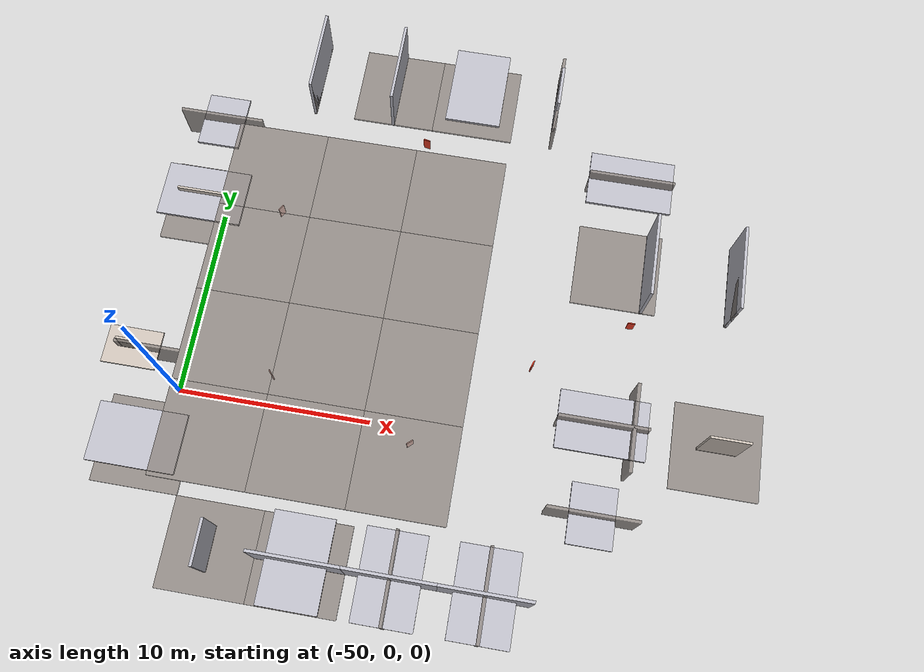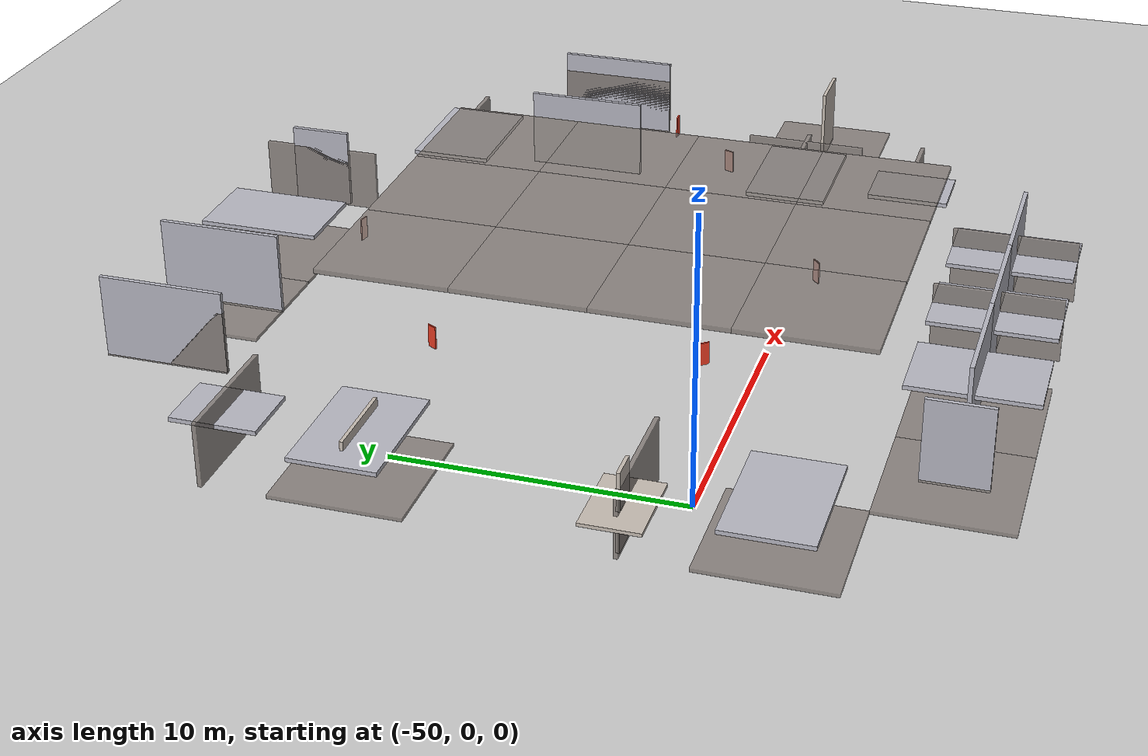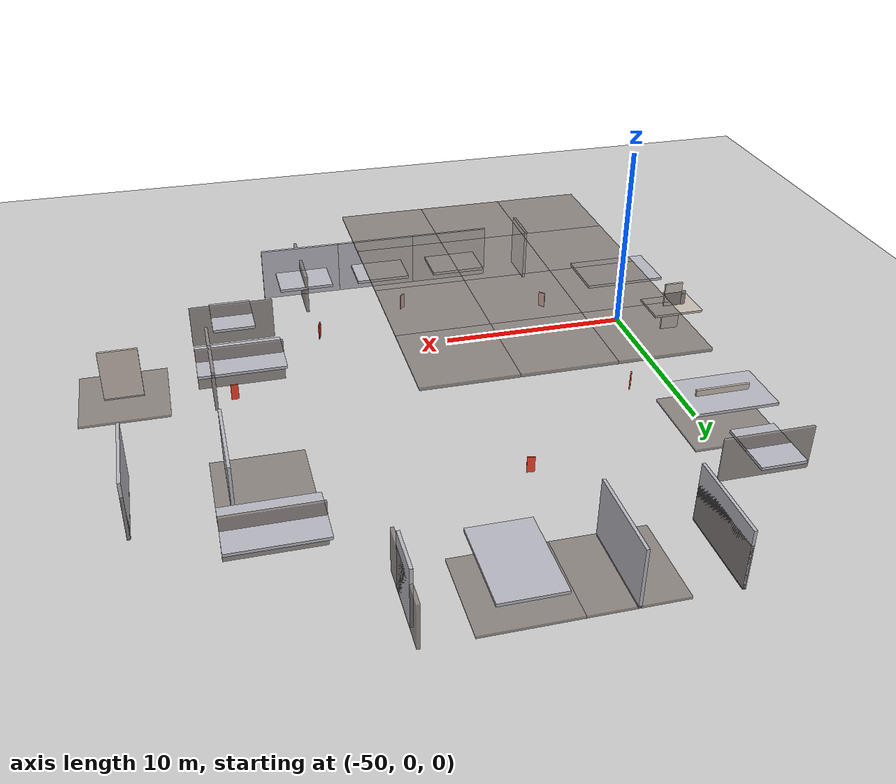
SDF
<sdf version="1.6">
 <world name="lab4_world">
  <include><uri>model://ground_plane</uri></include>
  <include><uri>model://sun</uri></include>
  <model name="lab4_0000_Wall_Simple_01">
   <static>true</static>
   <pose>-22.5 10.5 1.5 0.0 -0.0 -1.5707963800073814</pose>
   <link name="link">
    <collision name="collision"><geometry><box><size>4.5 0.15 3.0</size></box></geometry></collision>
    <visual name="visual">
     <geometry><box><size>4.5 0.15 3.0</size></box></geometry>
     <material><ambient>0.72 0.72 0.76 1.0</ambient><diffuse>0.72 0.72 0.76 1.0</diffuse></material>
    </visual>
   </link>
  </model>
  <model name="lab4_0002_Wall_Simple_01">
   <static>true</static>
   <pose>-33.0 -7.5 1.5 0.0 0.0 3.141592327748393</pose>
   <link name="link">
    <collision name="collision"><geometry><box><size>4.5 0.15 3.0</size></box></geometry></collision>
    <visual name="visual">
     <geometry><box><size>4.5 0.15 3.0</size></box></geometry>
     <material><ambient>0.72 0.72 0.76 1.0</ambient><diffuse>0.72 0.72 0.76 1.0</diffuse></material>
    </visual>
   </link>
  </model>
  <model name="lab4_0003_Roof_02">
   <static>true</static>
   <pose>-37.5 6.0 5.625 3.141592653589793 3.258414000000058e-07 3.141592653589793</pose>
   <link name="link">
    <collision name="collision"><geometry><box><size>4.5 4.5 0.15</size></box></geometry></collision>
    <visual name="visual">
     <geometry><box><size>4.5 4.5 0.15</size></box></geometry>
     <material><ambient>0.55 0.52 0.5 0.85</ambient><diffuse>0.55 0.52 0.5 0.85</diffuse></material>
    </visual>
   </link>
  </model>
  <model name="lab4_0004_Roof_02">
   <static>true</static>
   <pose>-37.5 -3.0 5.625 3.141592653589793 3.258414000000058e-07 3.141592653589793</pose>
   <link name="link">
    <collision name="collision"><geometry><box><size>4.5 4.5 0.15</size></box></geometry></collision>
    <visual name="visual">
     <geometry><box><size>4.5 4.5 0.15</size></box></geometry>
     <material><ambient>0.55 0.52 0.5 0.85</ambient><diffuse>0.55 0.52 0.5 0.85</diffuse></material>
    </visual>
   </link>
  </model>
  <model name="lab4_0005_Roof_01">
   <static>true</static>
   <pose>-33.0 19.5 0.0 1.5707965267948765 0.0 1.5707967267948564</pose>
   <link name="link">
    <collision name="collision"><geometry><box><size>4.5 4.5 0.15</size></box></geometry></collision>
    <visual name="visual">
     <geometry><box><size>4.5 4.5 0.15</size></box></geometry>
     <material><ambient>0.55 0.52 0.5 0.85</ambient><diffuse>0.55 0.52 0.5 0.85</diffuse></material>
    </visual>
   </link>
  </model>
  <model name="lab4_0006_Roof_02">
   <static>true</static>
   <pose>-37.5 10.5 5.625 3.141592653589793 3.258414000000058e-07 3.141592653589793</pose>
   <link name="link">
    <collision name="collision"><geometry><box><size>4.5 4.5 0.15</size></box></geometry></collision>
    <visual name="visual">
     <geometry><box><size>4.5 4.5 0.15</size></box></geometry>
     <material><ambient>0.55 0.52 0.5 0.85</ambient><diffuse>0.55 0.52 0.5 0.85</diffuse></material>
    </visual>
   </link>
  </model>
  <model name="lab4_0007_Roof_01">
   <static>true</static>
   <pose>-37.5 -7.5 0.0 1.5707965267948765 0.0 -1.5707967267948564</pose>
   <link name="link">
    <collision name="collision"><geometry><box><size>4.5 4.5 0.15</size></box></geometry></collision>
    <visual name="visual">
     <geometry><box><size>4.5 4.5 0.15</size></box></geometry>
     <material><ambient>0.55 0.52 0.5 0.85</ambient><diffuse>0.55 0.52 0.5 0.85</diffuse></material>
    </visual>
   </link>
  </model>
  <model name="lab4_0008_Wall_Simple_01">
   <static>true</static>
   <pose>-37.5 19.5 1.4999992290394 1.5707965267949164 2.0039525594484076e-14 -1.5707965267949164</pose>
   <link name="link">
    <collision name="collision"><geometry><box><size>4.5 0.15 3.0</size></box></geometry></collision>
    <visual name="visual">
     <geometry><box><size>4.5 0.15 3.0</size></box></geometry>
     <material><ambient>0.72 0.72 0.76 1.0</ambient><diffuse>0.72 0.72 0.76 1.0</diffuse></material>
    </visual>
   </link>
  </model>
  <model name="lab4_0009_Wall_Simple_01">
   <static>true</static>
   <pose>-33.0 -7.5 1.5 1.5707965267949766 -9.99999800188613e-08 1.5707959267949765</pose>
   <link name="link">
    <collision name="collision"><geometry><box><size>4.5 0.15 3.0</size></box></geometry></collision>
    <visual name="visual">
     <geometry><box><size>4.5 0.15 3.0</size></box></geometry>
     <material><ambient>0.72 0.72 0.76 1.0</ambient><diffuse>0.72 0.72 0.76 1.0</diffuse></material>
    </visual>
   </link>
  </model>
  <model name="lab4_0010_Roof_02">
   <static>true</static>
   <pose>-37.5 1.5 5.625 3.141592653589793 3.258414000000058e-07 3.141592653589793</pose>
   <link name="link">
    <collision name="collision"><geometry><box><size>4.5 4.5 0.15</size></box></geometry></collision>
    <visual name="visual">
     <geometry><box><size>4.5 4.5 0.15</size></box></geometry>
     <material><ambient>0.55 0.52 0.5 0.85</ambient><diffuse>0.55 0.52 0.5 0.85</diffuse></material>
    </visual>
   </link>
  </model>
  <model name="lab4_0014_Wall_Simple_01">
   <static>true</static>
   <pose>-42.0 19.5 1.5 0.0 -0.0 -1.5707963800073814</pose>
   <link name="link">
    <collision name="collision"><geometry><box><size>4.5 0.15 3.0</size></box></geometry></collision>
    <visual name="visual">
     <geometry><box><size>4.5 0.15 3.0</size></box></geometry>
     <material><ambient>0.72 0.72 0.76 1.0</ambient><diffuse>0.72 0.72 0.76 1.0</diffuse></material>
    </visual>
   </link>
  </model>
  <model name="lab4_0015_Roof_01">
   <static>true</static>
   <pose>-42.0 -7.5 0.0 0.0 -0.0 -1.5707963800073814</pose>
   <link name="link">
    <collision name="collision"><geometry><box><size>4.5 4.5 0.15</size></box></geometry></collision>
    <visual name="visual">
     <geometry><box><size>4.5 4.5 0.15</size></box></geometry>
     <material><ambient>0.55 0.52 0.5 0.85</ambient><diffuse>0.55 0.52 0.5 0.85</diffuse></material>
    </visual>
   </link>
  </model>
  <model name="lab4_0016_Roof_01">
   <static>true</static>
   <pose>-37.5 19.5 0.0 -0.0 0.0 1.5707963800073814</pose>
   <link name="link">
    <collision name="collision"><geometry><box><size>4.5 4.5 0.15</size></box></geometry></collision>
    <visual name="visual">
     <geometry><box><size>4.5 4.5 0.15</size></box></geometry>
     <material><ambient>0.55 0.52 0.5 0.85</ambient><diffuse>0.55 0.52 0.5 0.85</diffuse></material>
    </visual>
   </link>
  </model>
  <model name="lab4_0017_Roof_02">
   <static>true</static>
   <pose>-42.0 10.5 5.625 3.141592653589793 3.258414000000058e-07 3.141592653589793</pose>
   <link name="link">
    <collision name="collision"><geometry><box><size>4.5 4.5 0.15</size></box></geometry></collision>
    <visual name="visual">
     <geometry><box><size>4.5 4.5 0.15</size></box></geometry>
     <material><ambient>0.55 0.52 0.5 0.85</ambient><diffuse>0.55 0.52 0.5 0.85</diffuse></material>
    </visual>
   </link>
  </model>
  <model name="lab4_0018_Roof_02">
   <static>true</static>
   <pose>-42.0 1.5 5.625 3.141592653589793 3.258414000000058e-07 3.141592653589793</pose>
   <link name="link">
    <collision name="collision"><geometry><box><size>4.5 4.5 0.15</size></box></geometry></collision>
    <visual name="visual">
     <geometry><box><size>4.5 4.5 0.15</size></box></geometry>
     <material><ambient>0.55 0.52 0.5 0.85</ambient><diffuse>0.55 0.52 0.5 0.85</diffuse></material>
    </visual>
   </link>
  </model>
  <model name="lab4_0019_Wall_Simple_01">
   <static>true</static>
   <pose>-37.5 -7.5 1.5 0.0 0.0 3.141592327748393</pose>
   <link name="link">
    <collision name="collision"><geometry><box><size>4.5 0.15 3.0</size></box></geometry></collision>
    <visual name="visual">
     <geometry><box><size>4.5 0.15 3.0</size></box></geometry>
     <material><ambient>0.72 0.72 0.76 1.0</ambient><diffuse>0.72 0.72 0.76 1.0</diffuse></material>
    </visual>
   </link>
  </model>
  <model name="lab4_0020_Wall_Simple_01">
   <static>true</static>
   <pose>-37.5 -7.5 1.5 1.5707965267949766 -9.99999800188613e-08 1.5707959267949765</pose>
   <link name="link">
    <collision name="collision"><geometry><box><size>4.5 0.15 3.0</size></box></geometry></collision>
    <visual name="visual">
     <geometry><box><size>4.5 0.15 3.0</size></box></geometry>
     <material><ambient>0.72 0.72 0.76 1.0</ambient><diffuse>0.72 0.72 0.76 1.0</diffuse></material>
    </visual>
   </link>
  </model>
  <model name="lab4_0021_Roof_02">
   <static>true</static>
   <pose>-42.0 -3.0 5.625 3.141592653589793 3.258414000000058e-07 3.141592653589793</pose>
   <link name="link">
    <collision name="collision"><geometry><box><size>4.5 4.5 0.15</size></box></geometry></collision>
    <visual name="visual">
     <geometry><box><size>4.5 4.5 0.15</size></box></geometry>
     <material><ambient>0.55 0.52 0.5 0.85</ambient><diffuse>0.55 0.52 0.5 0.85</diffuse></material>
    </visual>
   </link>
  </model>
  <model name="lab4_0022_Roof_02">
   <static>true</static>
   <pose>-42.0 6.0 5.625 3.141592653589793 3.258414000000058e-07 3.141592653589793</pose>
   <link name="link">
    <collision name="collision"><geometry><box><size>4.5 4.5 0.15</size></box></geometry></collision>
    <visual name="visual">
     <geometry><box><size>4.5 4.5 0.15</size></box></geometry>
     <material><ambient>0.55 0.52 0.5 0.85</ambient><diffuse>0.55 0.52 0.5 0.85</diffuse></material>
    </visual>
   </link>
  </model>
  <model name="lab4_0029_Collider_02">
   <static>true</static>
   <pose>-22.515 -8.939999 1.5 0.0 -0.0 -2.9140323615089136</pose>
   <link name="link">
    <collision name="collision"><geometry><box><size>4.5 4.5 3.0</size></box></geometry></collision>
   </link>
  </model>
  <model name="lab4_0031_Collider_03">
   <static>true</static>
   <pose>-48.6 18.975 1.5 0.0 0.0 2.3325361214210902</pose>
   <link name="link">
    <collision name="collision"><geometry><box><size>4.5 4.5 3.0</size></box></geometry></collision>
   </link>
  </model>
  <model name="lab4_0032_Wall_Arc_90_02">
   <static>true</static>
   <pose>-46.5 -7.5 1.5 0.0 -0.0 -1.5707960971646564</pose>
   <link name="link">
    <collision name="collision"><geometry><box><size>2.25 0.15 3.0</size></box></geometry></collision>
    <visual name="visual">
     <geometry><box><size>2.25 0.15 3.0</size></box></geometry>
     <material><ambient>0.72 0.72 0.76 1.0</ambient><diffuse>0.72 0.72 0.76 1.0</diffuse></material>
    </visual>
   </link>
  </model>
  <model name="lab4_0033_Wall_Arc_90_02">
   <static>true</static>
   <pose>-51.0 15.0 1.5000001788139 1.570796380007374 -0.0 3.141592653589793</pose>
   <link name="link">
    <collision name="collision"><geometry><box><size>2.25 0.15 3.0</size></box></geometry></collision>
    <visual name="visual">
     <geometry><box><size>2.25 0.15 3.0</size></box></geometry>
     <material><ambient>0.72 0.72 0.76 1.0</ambient><diffuse>0.72 0.72 0.76 1.0</diffuse></material>
    </visual>
   </link>
  </model>
  <model name="lab4_0034_Wall_Simple_01">
   <static>true</static>
   <pose>-51.0 -3.0 1.4999992290394 1.570796380007408 2.3040460015056276e-14 -3.258412957821058e-07</pose>
   <link name="link">
    <collision name="collision"><geometry><box><size>4.5 0.15 3.0</size></box></geometry></collision>
    <visual name="visual">
     <geometry><box><size>4.5 0.15 3.0</size></box></geometry>
     <material><ambient>0.72 0.72 0.76 1.0</ambient><diffuse>0.72 0.72 0.76 1.0</diffuse></material>
    </visual>
   </link>
  </model>
  <model name="lab4_0035_Collider_02">
   <static>true</static>
   <pose>-51.015 -2.94 1.5 0.0 -0.0 -2.9140319743407614</pose>
   <link name="link">
    <collision name="collision"><geometry><box><size>4.5 4.5 3.0</size></box></geometry></collision>
   </link>
  </model>
  <model name="lab4_0036_Door_Arch_01">
   <static>true</static>
   <pose>-51.0 10.5 1.4 1.5707965267948765 0.0 1.5707963267948966</pose>
   <link name="link">
    <collision name="collision"><geometry><box><size>2.0 0.12 2.8</size></box></geometry></collision>
    <visual name="visual">
     <geometry><box><size>2.0 0.12 2.8</size></box></geometry>
     <material><ambient>0.78 0.74 0.7 1.0</ambient><diffuse>0.78 0.74 0.7 1.0</diffuse></material>
    </visual>
   </link>
  </model>
  <model name="lab4_0037_Roof_01">
   <static>true</static>
   <pose>-51.0 15.0 0.0 1.570796380007374 -0.0 3.141592653589793</pose>
   <link name="link">
    <collision name="collision"><geometry><box><size>4.5 4.5 0.15</size></box></geometry></collision>
    <visual name="visual">
     <geometry><box><size>4.5 4.5 0.15</size></box></geometry>
     <material><ambient>0.55 0.52 0.5 0.85</ambient><diffuse>0.55 0.52 0.5 0.85</diffuse></material>
    </visual>
   </link>
  </model>
  <model name="lab4_0038_Roof_Angle_01">
   <static>true</static>
   <pose>-46.5 19.5 1.788139e-07 1.5707965267948765 0.0 1.5707963267948966</pose>
   <link name="link">
    <collision name="collision"><geometry><box><size>4.5 4.5 0.15</size></box></geometry></collision>
    <visual name="visual">
     <geometry><box><size>4.5 4.5 0.15</size></box></geometry>
     <material><ambient>0.55 0.52 0.5 0.85</ambient><diffuse>0.55 0.52 0.5 0.85</diffuse></material>
    </visual>
   </link>
  </model>
  <model name="lab4_0039_Roof_Angle_01">
   <static>true</static>
   <pose>-51.0 -3.0 0.0 0.0 -0.0 3.141592653589793</pose>
   <link name="link">
    <collision name="collision"><geometry><box><size>4.5 4.5 0.15</size></box></geometry></collision>
    <visual name="visual">
     <geometry><box><size>4.5 4.5 0.15</size></box></geometry>
     <material><ambient>0.55 0.52 0.5 0.85</ambient><diffuse>0.55 0.52 0.5 0.85</diffuse></material>
    </visual>
   </link>
  </model>
  <model name="lab4_0040_Roof_Door_01">
   <static>true</static>
   <pose>-51.0 10.5 0.0 0.0 -0.0 3.141592653589793</pose>
   <link name="link">
    <collision name="collision"><geometry><box><size>4.5 4.5 0.15</size></box></geometry></collision>
    <visual name="visual">
     <geometry><box><size>4.5 4.5 0.15</size></box></geometry>
     <material><ambient>0.55 0.52 0.5 0.85</ambient><diffuse>0.55 0.52 0.5 0.85</diffuse></material>
    </visual>
   </link>
  </model>
  <model name="lab4_0041_Door_Arch_01">
   <static>true</static>
   <pose>-52.5 1.5 1.4 1.5707965267948765 0.0 -1.5707963267948966</pose>
   <link name="link">
    <collision name="collision"><geometry><box><size>2.0 0.12 2.8</size></box></geometry></collision>
    <visual name="visual">
     <geometry><box><size>2.0 0.12 2.8</size></box></geometry>
     <material><ambient>0.78 0.74 0.7 1.0</ambient><diffuse>0.78 0.74 0.7 1.0</diffuse></material>
    </visual>
   </link>
  </model>
  <model name="lab4_0042_Roof_01">
   <static>true</static>
   <pose>-51.0 1.5 0.0 1.570796380007374 -0.0 3.141592653589793</pose>
   <link name="link">
    <collision name="collision"><geometry><box><size>4.5 4.5 0.15</size></box></geometry></collision>
    <visual name="visual">
     <geometry><box><size>4.5 4.5 0.15</size></box></geometry>
     <material><ambient>0.55 0.52 0.5 0.85</ambient><diffuse>0.55 0.52 0.5 0.85</diffuse></material>
    </visual>
   </link>
  </model>
  <model name="lab4_0043_Wall_Simple_01">
   <static>true</static>
   <pose>-51.0 10.5 1.4999992290394 1.570796380007408 2.3040460015056276e-14 -3.258412957821058e-07</pose>
   <link name="link">
    <collision name="collision"><geometry><box><size>4.5 0.15 3.0</size></box></geometry></collision>
    <visual name="visual">
     <geometry><box><size>4.5 0.15 3.0</size></box></geometry>
     <material><ambient>0.72 0.72 0.76 1.0</ambient><diffuse>0.72 0.72 0.76 1.0</diffuse></material>
    </visual>
   </link>
  </model>
  <model name="lab4_0044_Collider_03">
   <static>true</static>
   <pose>-50.475 -5.099999 1.5 0.0 -0.0 -2.3798527775389067</pose>
   <link name="link">
    <collision name="collision"><geometry><box><size>4.5 4.5 3.0</size></box></geometry></collision>
   </link>
  </model>
  <model name="lab4_0045_Collider_02">
   <static>true</static>
   <pose>-46.44 19.515 1.5 0.0 0.0 1.7983566941101234</pose>
   <link name="link">
    <collision name="collision"><geometry><box><size>4.5 4.5 3.0</size></box></geometry></collision>
   </link>
  </model>
  <model name="lab4_0046_Collider_01">
   <static>true</static>
   <pose>-51.0 15.0 1.5 0.0 0.0 -0.25671820030754156</pose>
   <link name="link">
    <collision name="collision"><geometry><box><size>4.5 4.5 3.0</size></box></geometry></collision>
   </link>
  </model>
  <model name="lab4_0047_Collider_01">
   <static>true</static>
   <pose>-46.5 -7.5 1.5 0.0 0.0 1.3140785187827901</pose>
   <link name="link">
    <collision name="collision"><geometry><box><size>4.5 4.5 3.0</size></box></geometry></collision>
   </link>
  </model>
  <model name="lab4_0048_Roof_01">
   <static>true</static>
   <pose>-22.5 10.5 0.0 1.5707965267948765 0.0 1.5707967267948564</pose>
   <link name="link">
    <collision name="collision"><geometry><box><size>4.5 4.5 0.15</size></box></geometry></collision>
    <visual name="visual">
     <geometry><box><size>4.5 4.5 0.15</size></box></geometry>
     <material><ambient>0.55 0.52 0.5 0.85</ambient><diffuse>0.55 0.52 0.5 0.85</diffuse></material>
    </visual>
   </link>
  </model>
  <model name="lab4_0049_Door_Arch_01">
   <static>true</static>
   <pose>-22.5 1.5 1.4 0.0 0.0 3.141592327748393</pose>
   <link name="link">
    <collision name="collision"><geometry><box><size>2.0 0.12 2.8</size></box></geometry></collision>
    <visual name="visual">
     <geometry><box><size>2.0 0.12 2.8</size></box></geometry>
     <material><ambient>0.78 0.74 0.7 1.0</ambient><diffuse>0.78 0.74 0.7 1.0</diffuse></material>
    </visual>
   </link>
  </model>
  <model name="lab4_0051_Roof_Door_01">
   <static>true</static>
   <pose>-22.5 1.5 0.0 0.0 -0.0 -1.5707963800073814</pose>
   <link name="link">
    <collision name="collision"><geometry><box><size>4.5 4.5 0.15</size></box></geometry></collision>
    <visual name="visual">
     <geometry><box><size>4.5 4.5 0.15</size></box></geometry>
     <material><ambient>0.55 0.52 0.5 0.85</ambient><diffuse>0.55 0.52 0.5 0.85</diffuse></material>
    </visual>
   </link>
  </model>
  <model name="lab4_0058_Door_Left_01">
   <static>true</static>
   <pose>-52.5 1.5 1.4 0.0 -0.0 -1.570796380007374</pose>
   <link name="link">
    <collision name="collision"><geometry><box><size>0.12 1.0 2.8</size></box></geometry></collision>
    <visual name="visual">
     <geometry><box><size>0.12 1.0 2.8</size></box></geometry>
     <material><ambient>0.78 0.74 0.7 1.0</ambient><diffuse>0.78 0.74 0.7 1.0</diffuse></material>
    </visual>
   </link>
  </model>
  <model name="lab4_0068_Door_Left_01">
   <static>true</static>
   <pose>-51.0 10.5 1.4000018863149999 1.5707967267947764 0.0 1.5707967267947764</pose>
   <link name="link">
    <collision name="collision"><geometry><box><size>0.12 1.0 2.8</size></box></geometry></collision>
    <visual name="visual">
     <geometry><box><size>0.12 1.0 2.8</size></box></geometry>
     <material><ambient>0.78 0.74 0.7 1.0</ambient><diffuse>0.78 0.74 0.7 1.0</diffuse></material>
    </visual>
   </link>
  </model>
  <model name="lab4_0082_Wall_Simple_01">
   <static>true</static>
   <pose>-27.0 10.5 1.5 0.0 -0.0 -1.5707963800073814</pose>
   <link name="link">
    <collision name="collision"><geometry><box><size>4.5 0.15 3.0</size></box></geometry></collision>
    <visual name="visual">
     <geometry><box><size>4.5 0.15 3.0</size></box></geometry>
     <material><ambient>0.72 0.72 0.76 1.0</ambient><diffuse>0.72 0.72 0.76 1.0</diffuse></material>
    </visual>
   </link>
  </model>
  <model name="lab4_0083_Roof_01">
   <static>true</static>
   <pose>-28.5 -3.0 0.0 1.570796380007374 0.0 -0.0</pose>
   <link name="link">
    <collision name="collision"><geometry><box><size>4.5 4.5 0.15</size></box></geometry></collision>
    <visual name="visual">
     <geometry><box><size>4.5 4.5 0.15</size></box></geometry>
     <material><ambient>0.55 0.52 0.5 0.85</ambient><diffuse>0.55 0.52 0.5 0.85</diffuse></material>
    </visual>
   </link>
  </model>
  <model name="lab4_0084_Door_Arch_01">
   <static>true</static>
   <pose>-28.5 1.5 1.4 1.5707965267948765 0.0 -1.5707967267948564</pose>
   <link name="link">
    <collision name="collision"><geometry><box><size>2.0 0.12 2.8</size></box></geometry></collision>
    <visual name="visual">
     <geometry><box><size>2.0 0.12 2.8</size></box></geometry>
     <material><ambient>0.78 0.74 0.7 1.0</ambient><diffuse>0.78 0.74 0.7 1.0</diffuse></material>
    </visual>
   </link>
  </model>
  <model name="lab4_0085_Roof_Angle_01">
   <static>true</static>
   <pose>-33.0 -7.5 1.788139e-07 1.5707965267948765 0.0 -1.5707967267948564</pose>
   <link name="link">
    <collision name="collision"><geometry><box><size>4.5 4.5 0.15</size></box></geometry></collision>
    <visual name="visual">
     <geometry><box><size>4.5 4.5 0.15</size></box></geometry>
     <material><ambient>0.55 0.52 0.5 0.85</ambient><diffuse>0.55 0.52 0.5 0.85</diffuse></material>
    </visual>
   </link>
  </model>
  <model name="lab4_0086_Collider_03">
   <static>true</static>
   <pose>-30.9 -6.974999 1.5 0.0 -0.0 -0.8090566831456931</pose>
   <link name="link">
    <collision name="collision"><geometry><box><size>4.5 4.5 3.0</size></box></geometry></collision>
   </link>
  </model>
  <model name="lab4_0087_Wall_Arc_90_02">
   <static>true</static>
   <pose>-33.0 19.5 1.5 -0.0 0.0 1.5707963800073814</pose>
   <link name="link">
    <collision name="collision"><geometry><box><size>2.25 0.15 3.0</size></box></geometry></collision>
    <visual name="visual">
     <geometry><box><size>2.25 0.15 3.0</size></box></geometry>
     <material><ambient>0.72 0.72 0.76 1.0</ambient><diffuse>0.72 0.72 0.76 1.0</diffuse></material>
    </visual>
   </link>
  </model>
  <model name="lab4_0088_Wall_Simple_01">
   <static>true</static>
   <pose>-28.5 15.0 1.4999992290394 1.570796380007408 2.3040460015056276e-14 3.14159232774844</pose>
   <link name="link">
    <collision name="collision"><geometry><box><size>4.5 0.15 3.0</size></box></geometry></collision>
    <visual name="visual">
     <geometry><box><size>4.5 0.15 3.0</size></box></geometry>
     <material><ambient>0.72 0.72 0.76 1.0</ambient><diffuse>0.72 0.72 0.76 1.0</diffuse></material>
    </visual>
   </link>
  </model>
  <model name="lab4_0089_Collider_02">
   <static>true</static>
   <pose>-28.485 14.94 1.5 -0.0 0.0 0.22756068167695795</pose>
   <link name="link">
    <collision name="collision"><geometry><box><size>4.5 4.5 3.0</size></box></geometry></collision>
   </link>
  </model>
  <model name="lab4_0090_Wall_Arc_90_02">
   <static>true</static>
   <pose>-28.5 -3.0 1.5000001788139 1.570796380007374 0.0 -0.0</pose>
   <link name="link">
    <collision name="collision"><geometry><box><size>2.25 0.15 3.0</size></box></geometry></collision>
    <visual name="visual">
     <geometry><box><size>2.25 0.15 3.0</size></box></geometry>
     <material><ambient>0.72 0.72 0.76 1.0</ambient><diffuse>0.72 0.72 0.76 1.0</diffuse></material>
    </visual>
   </link>
  </model>
  <model name="lab4_0091_Collider_02">
   <static>true</static>
   <pose>-33.06 -7.514999 1.5 0.0 -0.0 -1.3432360122908897</pose>
   <link name="link">
    <collision name="collision"><geometry><box><size>4.5 4.5 3.0</size></box></geometry></collision>
   </link>
  </model>
  <model name="lab4_0092_Collider_01">
   <static>true</static>
   <pose>-28.5 -3.0 1.5 0.0 0.0 2.884874576881996</pose>
   <link name="link">
    <collision name="collision"><geometry><box><size>4.5 4.5 3.0</size></box></geometry></collision>
   </link>
  </model>
  <model name="lab4_0093_Door_Arch_01">
   <static>true</static>
   <pose>-27.0 10.5 1.4 -0.0 0.0 1.5707963800073814</pose>
   <link name="link">
    <collision name="collision"><geometry><box><size>2.0 0.12 2.8</size></box></geometry></collision>
    <visual name="visual">
     <geometry><box><size>2.0 0.12 2.8</size></box></geometry>
     <material><ambient>0.78 0.74 0.7 1.0</ambient><diffuse>0.78 0.74 0.7 1.0</diffuse></material>
    </visual>
   </link>
  </model>
  <model name="lab4_0094_Roof_Angle_01">
   <static>true</static>
   <pose>-28.5 15.0 1.788139e-07 1.570796380007374 0.0 -0.0</pose>
   <link name="link">
    <collision name="collision"><geometry><box><size>4.5 4.5 0.15</size></box></geometry></collision>
    <visual name="visual">
     <geometry><box><size>4.5 4.5 0.15</size></box></geometry>
     <material><ambient>0.55 0.52 0.5 0.85</ambient><diffuse>0.55 0.52 0.5 0.85</diffuse></material>
    </visual>
   </link>
  </model>
  <model name="lab4_0095_Collider_03">
   <static>true</static>
   <pose>-29.025 17.1 1.5 -0.0 0.0 0.7617398497767799</pose>
   <link name="link">
    <collision name="collision"><geometry><box><size>4.5 4.5 3.0</size></box></geometry></collision>
   </link>
  </model>
  <model name="lab4_0096_Wall_Simple_01">
   <static>true</static>
   <pose>-28.5 1.5 1.4999992290394 1.570796380007408 2.3040460015056276e-14 3.14159232774844</pose>
   <link name="link">
    <collision name="collision"><geometry><box><size>4.5 0.15 3.0</size></box></geometry></collision>
    <visual name="visual">
     <geometry><box><size>4.5 0.15 3.0</size></box></geometry>
     <material><ambient>0.72 0.72 0.76 1.0</ambient><diffuse>0.72 0.72 0.76 1.0</diffuse></material>
    </visual>
   </link>
  </model>
  <model name="lab4_0097_Roof_01">
   <static>true</static>
   <pose>-28.5 10.5 0.0 0.0 -0.0 0.0</pose>
   <link name="link">
    <collision name="collision"><geometry><box><size>4.5 4.5 0.15</size></box></geometry></collision>
    <visual name="visual">
     <geometry><box><size>4.5 4.5 0.15</size></box></geometry>
     <material><ambient>0.55 0.52 0.5 0.85</ambient><diffuse>0.55 0.52 0.5 0.85</diffuse></material>
    </visual>
   </link>
  </model>
  <model name="lab4_0098_Roof_Door_01">
   <static>true</static>
   <pose>-28.5 1.5 0.0 1.570796380007374 0.0 -0.0</pose>
   <link name="link">
    <collision name="collision"><geometry><box><size>4.5 4.5 0.15</size></box></geometry></collision>
    <visual name="visual">
     <geometry><box><size>4.5 4.5 0.15</size></box></geometry>
     <material><ambient>0.55 0.52 0.5 0.85</ambient><diffuse>0.55 0.52 0.5 0.85</diffuse></material>
    </visual>
   </link>
  </model>
  <model name="lab4_0099_Collider_01">
   <static>true</static>
   <pose>-33.0 19.5 1.5 0.0 -0.0 -1.8275142851372297</pose>
   <link name="link">
    <collision name="collision"><geometry><box><size>4.5 4.5 3.0</size></box></geometry></collision>
   </link>
  </model>
  <model name="lab4_0124_Roof_01">
   <static>true</static>
   <pose>-27.0 1.5 0.0 1.5707965267948765 0.0 -1.5707967267948564</pose>
   <link name="link">
    <collision name="collision"><geometry><box><size>4.5 4.5 0.15</size></box></geometry></collision>
    <visual name="visual">
     <geometry><box><size>4.5 4.5 0.15</size></box></geometry>
     <material><ambient>0.55 0.52 0.5 0.85</ambient><diffuse>0.55 0.52 0.5 0.85</diffuse></material>
    </visual>
   </link>
  </model>
  <model name="lab4_0137_Wall_Simple_01">
   <static>true</static>
   <pose>-46.5 19.5 1.5 0.0 -0.0 -1.5707963800073814</pose>
   <link name="link">
    <collision name="collision"><geometry><box><size>4.5 0.15 3.0</size></box></geometry></collision>
    <visual name="visual">
     <geometry><box><size>4.5 0.15 3.0</size></box></geometry>
     <material><ambient>0.72 0.72 0.76 1.0</ambient><diffuse>0.72 0.72 0.76 1.0</diffuse></material>
    </visual>
   </link>
  </model>
  <model name="lab4_0138_Roof_01">
   <static>true</static>
   <pose>-42.0 19.5 0.0 -0.0 0.0 1.5707963800073814</pose>
   <link name="link">
    <collision name="collision"><geometry><box><size>4.5 4.5 0.15</size></box></geometry></collision>
    <visual name="visual">
     <geometry><box><size>4.5 4.5 0.15</size></box></geometry>
     <material><ambient>0.55 0.52 0.5 0.85</ambient><diffuse>0.55 0.52 0.5 0.85</diffuse></material>
    </visual>
   </link>
  </model>
  <model name="lab4_0139_Wall_Simple_01">
   <static>true</static>
   <pose>-42.0 -7.5 1.5 1.5707965267949766 -9.99999800188613e-08 1.5707959267949765</pose>
   <link name="link">
    <collision name="collision"><geometry><box><size>4.5 0.15 3.0</size></box></geometry></collision>
    <visual name="visual">
     <geometry><box><size>4.5 0.15 3.0</size></box></geometry>
     <material><ambient>0.72 0.72 0.76 1.0</ambient><diffuse>0.72 0.72 0.76 1.0</diffuse></material>
    </visual>
   </link>
  </model>
  <model name="lab4_0140_Roof_02">
   <static>true</static>
   <pose>-46.5 1.5 5.625 3.141592653589793 3.258414000000058e-07 3.141592653589793</pose>
   <link name="link">
    <collision name="collision"><geometry><box><size>4.5 4.5 0.15</size></box></geometry></collision>
    <visual name="visual">
     <geometry><box><size>4.5 4.5 0.15</size></box></geometry>
     <material><ambient>0.55 0.52 0.5 0.85</ambient><diffuse>0.55 0.52 0.5 0.85</diffuse></material>
    </visual>
   </link>
  </model>
  <model name="lab4_0141_Roof_02">
   <static>true</static>
   <pose>-46.5 10.5 5.625 3.141592653589793 3.258414000000058e-07 3.141592653589793</pose>
   <link name="link">
    <collision name="collision"><geometry><box><size>4.5 4.5 0.15</size></box></geometry></collision>
    <visual name="visual">
     <geometry><box><size>4.5 4.5 0.15</size></box></geometry>
     <material><ambient>0.55 0.52 0.5 0.85</ambient><diffuse>0.55 0.52 0.5 0.85</diffuse></material>
    </visual>
   </link>
  </model>
  <model name="lab4_0142_Roof_01">
   <static>true</static>
   <pose>-46.5 -7.5 0.0 0.0 -0.0 -1.5707963800073814</pose>
   <link name="link">
    <collision name="collision"><geometry><box><size>4.5 4.5 0.15</size></box></geometry></collision>
    <visual name="visual">
     <geometry><box><size>4.5 4.5 0.15</size></box></geometry>
     <material><ambient>0.55 0.52 0.5 0.85</ambient><diffuse>0.55 0.52 0.5 0.85</diffuse></material>
    </visual>
   </link>
  </model>
  <model name="lab4_0143_Roof_02">
   <static>true</static>
   <pose>-46.5 6.0 5.625 3.141592653589793 3.258414000000058e-07 3.141592653589793</pose>
   <link name="link">
    <collision name="collision"><geometry><box><size>4.5 4.5 0.15</size></box></geometry></collision>
    <visual name="visual">
     <geometry><box><size>4.5 4.5 0.15</size></box></geometry>
     <material><ambient>0.55 0.52 0.5 0.85</ambient><diffuse>0.55 0.52 0.5 0.85</diffuse></material>
    </visual>
   </link>
  </model>
  <model name="lab4_0144_Roof_02">
   <static>true</static>
   <pose>-46.5 -3.0 5.625 3.141592653589793 3.258414000000058e-07 3.141592653589793</pose>
   <link name="link">
    <collision name="collision"><geometry><box><size>4.5 4.5 0.15</size></box></geometry></collision>
    <visual name="visual">
     <geometry><box><size>4.5 4.5 0.15</size></box></geometry>
     <material><ambient>0.55 0.52 0.5 0.85</ambient><diffuse>0.55 0.52 0.5 0.85</diffuse></material>
    </visual>
   </link>
  </model>
  <model name="lab4_0145_Wall_Simple_01">
   <static>true</static>
   <pose>-42.0 -7.5 1.5 0.0 0.0 3.141592327748393</pose>
   <link name="link">
    <collision name="collision"><geometry><box><size>4.5 0.15 3.0</size></box></geometry></collision>
    <visual name="visual">
     <geometry><box><size>4.5 0.15 3.0</size></box></geometry>
     <material><ambient>0.72 0.72 0.76 1.0</ambient><diffuse>0.72 0.72 0.76 1.0</diffuse></material>
    </visual>
   </link>
  </model>
  <model name="lab4_gate_06">
   <static>true</static>
   <pose>-27.85 6.470001 2.67 0.0 -0.0 3.141592653589793</pose>
   <link name="link">
    <visual name="visual">
     <geometry><box><size>0.35 0.05 0.8</size></box></geometry>
     <material><ambient>0.95 0.25 0.15 0.9</ambient><diffuse>0.95 0.25 0.15 0.9</diffuse></material>
    </visual>
   </link>
  </model>
  <model name="lab4_gate_07">
   <static>true</static>
   <pose>-32.45 3.28 3.57 0.0 -0.0 -1.9432495460426247</pose>
   <link name="link">
    <visual name="visual">
     <geometry><box><size>0.35 0.05 0.8</size></box></geometry>
     <material><ambient>0.95 0.25 0.15 0.9</ambient><diffuse>0.95 0.25 0.15 0.9</diffuse></material>
    </visual>
   </link>
  </model>
  <model name="lab4_gate_08">
   <static>true</static>
   <pose>-37.67 -1.17 2.2 0.0 -0.0 -2.397803025647577</pose>
   <link name="link">
    <visual name="visual">
     <geometry><box><size>0.35 0.05 0.8</size></box></geometry>
     <material><ambient>0.95 0.25 0.15 0.9</ambient><diffuse>0.95 0.25 0.15 0.9</diffuse></material>
    </visual>
   </link>
  </model>
  <model name="lab4_gate_09">
   <static>true</static>
   <pose>-44.96 0.9899998 2.510287 0.0 0.0 2.2794177967241858</pose>
   <link name="link">
    <visual name="visual">
     <geometry><box><size>0.35 0.05 0.8</size></box></geometry>
     <material><ambient>0.95 0.25 0.15 0.9</ambient><diffuse>0.95 0.25 0.15 0.9</diffuse></material>
    </visual>
   </link>
  </model>
  <model name="lab4_gate_10">
   <static>true</static>
   <pose>-46.41 9.77 2.510287 0.0 0.0 1.057861761932207</pose>
   <link name="link">
    <visual name="visual">
     <geometry><box><size>0.35 0.05 0.8</size></box></geometry>
     <material><ambient>0.95 0.25 0.15 0.9</ambient><diffuse>0.95 0.25 0.15 0.9</diffuse></material>
    </visual>
   </link>
  </model>
  <model name="lab4_gate_11">
   <static>true</static>
   <pose>-39.62 14.97 2.510287 0.0 -0.0 -0.174533000875768</pose>
   <link name="link">
    <visual name="visual">
     <geometry><box><size>0.35 0.05 0.8</size></box></geometry>
     <material><ambient>0.95 0.25 0.15 0.9</ambient><diffuse>0.95 0.25 0.15 0.9</diffuse></material>
    </visual>
   </link>
  </model>
 </world>
</sdf>
